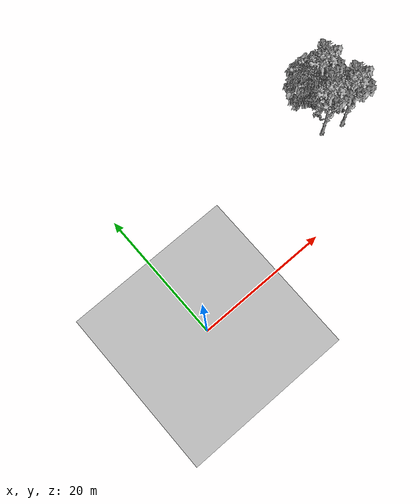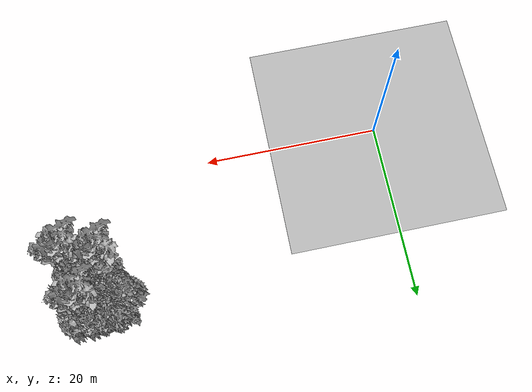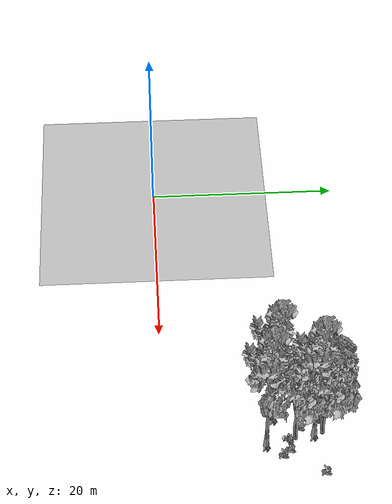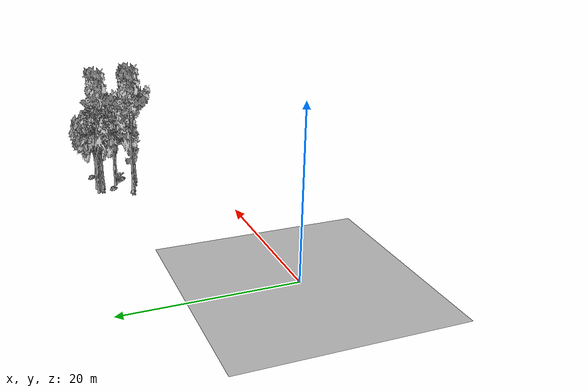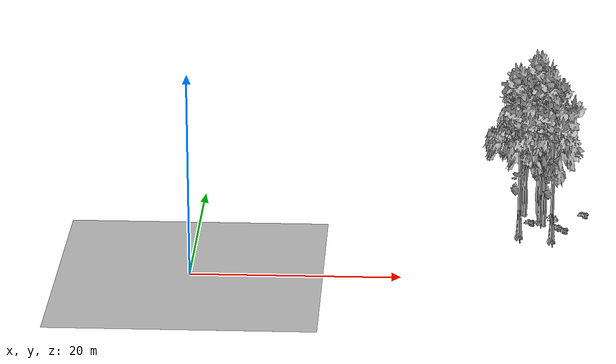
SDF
<sdf version="1.7">
 <world name="default">
  <model name="ground_plane">
   <static>1</static>
   <link name="link">
    <collision name="collision">
     <pose>-50 0 0 0 -0 0</pose>
     <geometry><plane><normal>0 0 1</normal><size>80 80</size></plane></geometry>
     <surface><contact><ode><min_depth>0.01</min_depth><max_vel>0</max_vel></ode></contact></surface>
    </collision>
    <visual name="grass">
     <cast_shadows>0</cast_shadows>
     <geometry>
      <mesh>
       <scale>0.46714285714285714 0.46714285714285714 0.1</scale>
       <uri>file://grass_plane/meshes/grass_plane.dae</uri>
      </mesh>
     </geometry>
    </visual>
   </link>
  </model>
  <model name="Tree 201">
   <static>1</static>
   <pose>34.47254224038679 10.039850978535974 0 1.57079 -0 0</pose>
   <link name="link">
    <collision name="collision">
     <geometry><mesh><scale>3.5 5 3.5</scale><uri>model://tree_9/meshes/tree_9.obj</uri></mesh></geometry>
    </collision>
    <visual name="visual">
     <geometry><mesh><scale>3.5 5 3.5</scale><uri>model://tree_9/meshes/tree_9.obj</uri></mesh></geometry>
    </visual>
   </link>
  </model>
  <model name="Tree 347">
   <static>1</static>
   <pose>33.72133368873395 12.937576240678396 0 1.57079 -0 0</pose>
   <link name="link">
    <collision name="collision">
     <geometry><mesh><scale>3.5 5 3.5</scale><uri>model://tree_2/meshes/tree_2.obj</uri></mesh></geometry>
    </collision>
    <visual name="visual">
     <geometry><mesh><scale>3.5 5 3.5</scale><uri>model://tree_2/meshes/tree_2.obj</uri></mesh></geometry>
    </visual>
   </link>
  </model>
  <model name="Tree 350">
   <static>1</static>
   <pose>33.20297059367812 15.644904573416241 0 1.57079 -0 0</pose>
   <link name="link">
    <collision name="collision">
     <geometry><mesh><scale>3.5 5 3.5</scale><uri>model://tree_2/meshes/tree_2.obj</uri></mesh></geometry>
    </collision>
    <visual name="visual">
     <geometry><mesh><scale>3.5 5 3.5</scale><uri>model://tree_2/meshes/tree_2.obj</uri></mesh></geometry>
    </visual>
   </link>
  </model>
  <model name="Tree 422">
   <static>1</static>
   <pose>31.329823340615377 10.96066397126372 0 1.57079 -0 0</pose>
   <link name="link">
    <collision name="collision">
     <geometry><mesh><scale>3.5 5 3.5</scale><uri>model://tree_9/meshes/tree_9.obj</uri></mesh></geometry>
    </collision>
    <visual name="visual">
     <geometry><mesh><scale>3.5 5 3.5</scale><uri>model://tree_9/meshes/tree_9.obj</uri></mesh></geometry>
    </visual>
   </link>
  </model>
  <model name="Tree 462">
   <static>1</static>
   <pose>33.46771314035429 14.818593898396408 0 1.57079 -0 0</pose>
   <link name="link">
    <collision name="collision">
     <geometry><mesh><scale>3.5 5 3.5</scale><uri>model://tree_9/meshes/tree_9.obj</uri></mesh></geometry>
    </collision>
    <visual name="visual">
     <geometry><mesh><scale>3.5 5 3.5</scale><uri>model://tree_9/meshes/tree_9.obj</uri></mesh></geometry>
    </visual>
   </link>
  </model>
  <model name="Tree 544">
   <static>1</static>
   <pose>31.910635783796195 15.437157243921618 0 1.57079 -0 0</pose>
   <link name="link">
    <collision name="collision">
     <geometry><mesh><scale>3.5 5 3.5</scale><uri>model://tree_2/meshes/tree_2.obj</uri></mesh></geometry>
    </collision>
    <visual name="visual">
     <geometry><mesh><scale>3.5 5 3.5</scale><uri>model://tree_2/meshes/tree_2.obj</uri></mesh></geometry>
    </visual>
   </link>
  </model>
  <model name="Tree 589">
   <static>1</static>
   <pose>31.698642832261328 15.655622625329414 0 1.57079 -0 0</pose>
   <link name="link">
    <collision name="collision">
     <geometry><mesh><scale>3.5 5 3.5</scale><uri>model://tree_2/meshes/tree_2.obj</uri></mesh></geometry>
    </collision>
    <visual name="visual">
     <geometry><mesh><scale>3.5 5 3.5</scale><uri>model://tree_2/meshes/tree_2.obj</uri></mesh></geometry>
    </visual>
   </link>
  </model>
  <model name="Bush 34">
   <static>1</static>
   <pose>32.47077128032943 13.503945759866795 0 1.57079 -0 0</pose>
   <link name="link">
    <collision name="collision">
     <geometry><mesh><scale>2 2 2</scale><uri>model://bush_2/meshes/bush_2.obj</uri></mesh></geometry>
     <surface><contact><collide_without_contact>false</collide_without_contact></contact></surface>
    </collision>
    <visual name="visual">
     <geometry><mesh><scale>2 2 2</scale><uri>model://bush_2/meshes/bush_2.obj</uri></mesh></geometry>
    </visual>
   </link>
  </model>
  <model name="Bush 40">
   <static>1</static>
   <pose>35.651991001647104 11.659873772664596 0 1.57079 -0 0</pose>
   <link name="link">
    <collision name="collision">
     <geometry><mesh><scale>2 2 2</scale><uri>model://bush_2/meshes/bush_2.obj</uri></mesh></geometry>
     <surface><contact><collide_without_contact>false</collide_without_contact></contact></surface>
    </collision>
    <visual name="visual">
     <geometry><mesh><scale>2 2 2</scale><uri>model://bush_2/meshes/bush_2.obj</uri></mesh></geometry>
    </visual>
   </link>
  </model>
  <model name="Bush 255">
   <static>1</static>
   <pose>35.00559107235863 12.371111151700589 0 1.57079 -0 0</pose>
   <link name="link">
    <collision name="collision">
     <geometry><mesh><scale>2 2 2</scale><uri>model://bush_2/meshes/bush_2.obj</uri></mesh></geometry>
     <surface><contact><collide_without_contact>false</collide_without_contact></contact></surface>
    </collision>
    <visual name="visual">
     <geometry><mesh><scale>2 2 2</scale><uri>model://bush_2/meshes/bush_2.obj</uri></mesh></geometry>
    </visual>
   </link>
  </model>
  <model name="Bush 312">
   <static>1</static>
   <pose>34.67078476818665 12.332815971614522 0 1.57079 -0 0</pose>
   <link name="link">
    <collision name="collision">
     <geometry><mesh><scale>2 2 2</scale><uri>model://bush_5/meshes/bush_5.obj</uri></mesh></geometry>
     <surface><contact><collide_without_contact>false</collide_without_contact></contact></surface>
    </collision>
    <visual name="visual">
     <geometry><mesh><scale>2 2 2</scale><uri>model://bush_5/meshes/bush_5.obj</uri></mesh></geometry>
    </visual>
   </link>
  </model>
  <model name="Bush 400">
   <static>1</static>
   <pose>37.77795825919574 15.625320570746297 0 1.57079 -0 0</pose>
   <link name="link">
    <collision name="collision">
     <geometry><mesh><scale>2 2 2</scale><uri>model://bush_2/meshes/bush_2.obj</uri></mesh></geometry>
     <surface><contact><collide_without_contact>false</collide_without_contact></contact></surface>
    </collision>
    <visual name="visual">
     <geometry><mesh><scale>2 2 2</scale><uri>model://bush_2/meshes/bush_2.obj</uri></mesh></geometry>
    </visual>
   </link>
  </model>
 </world>
</sdf>
